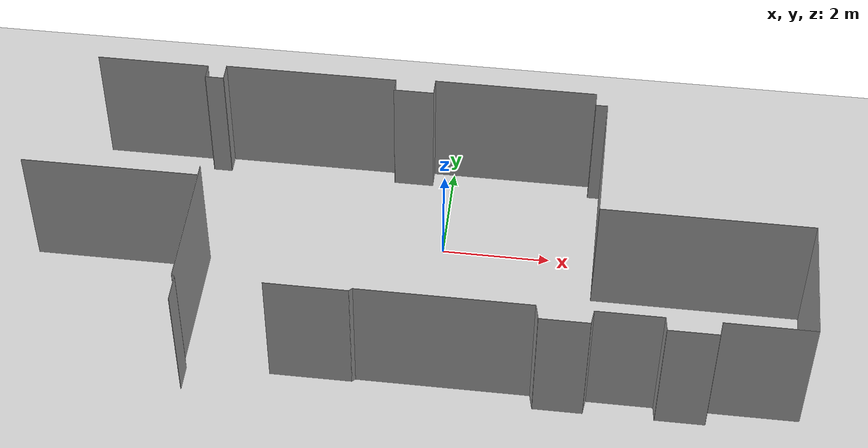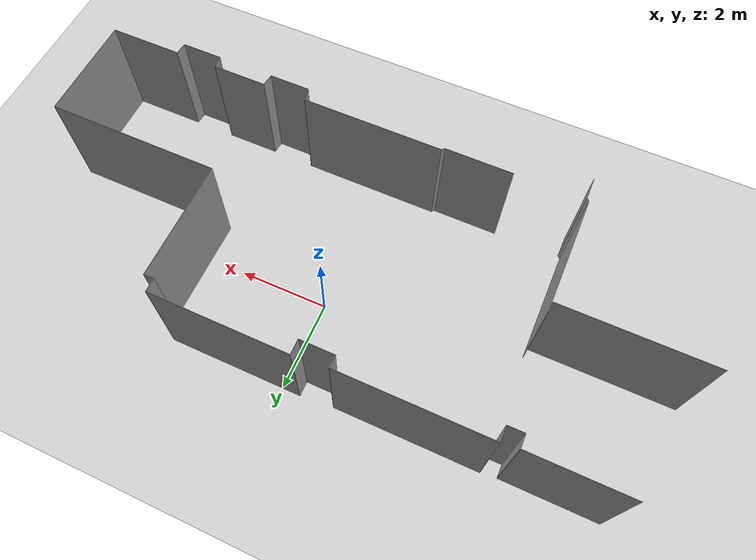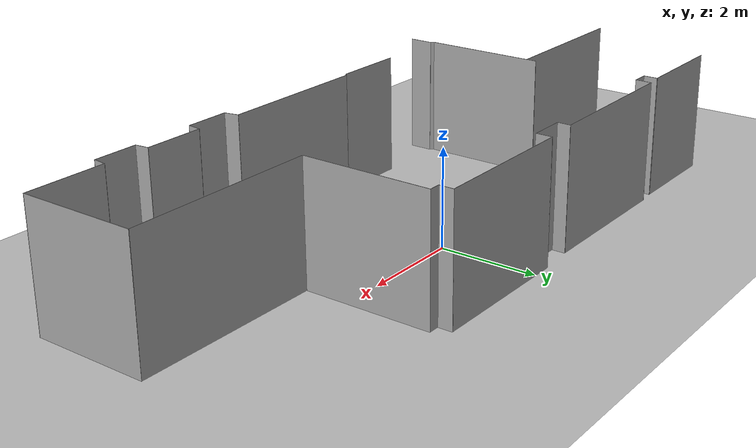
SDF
<sdf version="1.7">
 <world name="default">
  <light name="sun" type="directional">
   <pose>0 0 10 0 -0 0</pose>
   <diffuse>0.8 0.8 0.8 1</diffuse>
   <specular>0.2 0.2 0.2 1</specular>
   <attenuation>
    <range>1000</range>
    <constant>0.9</constant>
    <linear>0.01</linear>
    <quadratic>0.001</quadratic>
   </attenuation>
   <direction>-0.5 0.1 -0.9</direction>
   <spot><inner_angle>0</inner_angle><outer_angle>0</outer_angle><falloff>0</falloff></spot>
  </light>
  <plugin name="gazebo_ros_state" filename="libgazebo_ros_state.so">
   <ros>
    <namespace>/</namespace>
    <remapping>model_states:=model_states</remapping>
    <remapping>link_states:=link_states</remapping>
   </ros>
   <update_rate>1.0</update_rate>
  </plugin>
  <model name="ground_plane">
   <static>1</static>
   <link name="link">
    <collision name="collision">
     <geometry><plane><normal>0 0 1</normal><size>100 100</size></plane></geometry>
     <surface><friction><ode><mu>100</mu><mu2>50</mu2></ode></friction></surface>
    </collision>
    <visual name="visual">
     <cast_shadows>0</cast_shadows>
     <geometry><plane><normal>0 0 1</normal><size>100 100</size></plane></geometry>
     <material>
      <script><uri>file://media/materials/scripts/gazebo.material</uri><name>Gazebo/Grey</name></script>
     </material>
    </visual>
   </link>
  </model>
  <gravity>0 0 -9.8</gravity>
  <magnetic_field>6e-06 2.3e-05 -4.2e-05</magnetic_field>
  <atmosphere type="adiabatic"/>
  <physics type="ode">
   <max_step_size>0.01</max_step_size>
   <real_time_factor>1</real_time_factor>
   <real_time_update_rate>100</real_time_update_rate>
  </physics>
  <scene><ambient>0.4 0.4 0.4 1</ambient><background>0.7 0.7 0.7 1</background><shadows>0</shadows></scene>
  <audio><device>default</device></audio>
  <spherical_coordinates>
   <surface_model>EARTH_WGS84</surface_model>
   <latitude_deg>0</latitude_deg>
   <longitude_deg>0</longitude_deg>
   <elevation>0</elevation>
   <heading_deg>0</heading_deg>
  </spherical_coordinates>
  <model name="school_8f_square">
   <link name="Wall_0">
    <pose>-4.2855 1.7895 0 0 -0 1.5708</pose>
    <visual name="Wall_0_Visual">
     <pose>0 0 1.25 0 -0 0</pose>
     <geometry><box><size>0.338 0.01 2.5</size></box></geometry>
     <material>
      <script><uri>file://media/materials/scripts/gazebo.material</uri><name>Gazebo/Grey</name></script>
      <ambient>1 1 1 1</ambient>
      <shader type="pixel"/>
     </material>
     <meta><layer>0</layer></meta>
    </visual>
    <collision name="Wall_0_Collision">
     <pose>0 0 1.25 0 -0 0</pose>
     <geometry><box><size>0.338 0.01 2.5</size></box></geometry>
     <surface>
      <friction>
       <ode><mu>1</mu><mu2>1</mu2><fdir1>0 0 0</fdir1><slip1>0</slip1><slip2>0</slip2></ode>
       <torsional>
        <coefficient>1</coefficient>
        <patch_radius>0</patch_radius>
        <surface_radius>0</surface_radius>
        <use_patch_radius>1</use_patch_radius>
        <ode><slip>0</slip></ode>
       </torsional>
      </friction>
      <bounce><restitution_coefficient>0</restitution_coefficient><threshold>1e+06</threshold></bounce>
      <contact>
       <collide_without_contact>0</collide_without_contact>
       <collide_without_contact_bitmask>1</collide_without_contact_bitmask>
       <collide_bitmask>1</collide_bitmask>
       <ode>
        <soft_cfm>0</soft_cfm>
        <soft_erp>0.2</soft_erp>
        <kp>1e+13</kp>
        <kd>1</kd>
        <max_vel>0.01</max_vel>
        <min_depth>0</min_depth>
       </ode>
       <bullet>
        <split_impulse>1</split_impulse>
        <split_impulse_penetration_threshold>-0.01</split_impulse_penetration_threshold>
        <soft_cfm>0</soft_cfm>
        <soft_erp>0.2</soft_erp>
        <kp>1e+13</kp>
        <kd>1</kd>
       </bullet>
      </contact>
     </surface>
    </collision>
   </link>
   <link name="Wall_10">
    <pose>-0.3235 1.8525 0 0 -0 1.5708</pose>
    <visual name="Wall_10_Visual">
     <pose>0 0 1.25 0 -0 0</pose>
     <geometry><box><size>0.338 0.01 2.5</size></box></geometry>
     <material>
      <script><uri>file://media/materials/scripts/gazebo.material</uri><name>Gazebo/Grey</name></script>
      <ambient>1 1 1 1</ambient>
      <shader type="pixel"/>
     </material>
     <meta><layer>0</layer></meta>
    </visual>
    <collision name="Wall_10_Collision">
     <pose>0 0 1.25 0 -0 0</pose>
     <geometry><box><size>0.338 0.01 2.5</size></box></geometry>
     <surface>
      <friction>
       <ode><mu>1</mu><mu2>1</mu2><fdir1>0 0 0</fdir1><slip1>0</slip1><slip2>0</slip2></ode>
       <torsional>
        <coefficient>1</coefficient>
        <patch_radius>0</patch_radius>
        <surface_radius>0</surface_radius>
        <use_patch_radius>1</use_patch_radius>
        <ode><slip>0</slip></ode>
       </torsional>
      </friction>
      <bounce><restitution_coefficient>0</restitution_coefficient><threshold>1e+06</threshold></bounce>
      <contact>
       <collide_without_contact>0</collide_without_contact>
       <collide_without_contact_bitmask>1</collide_without_contact_bitmask>
       <collide_bitmask>1</collide_bitmask>
       <ode>
        <soft_cfm>0</soft_cfm>
        <soft_erp>0.2</soft_erp>
        <kp>1e+13</kp>
        <kd>1</kd>
        <max_vel>0.01</max_vel>
        <min_depth>0</min_depth>
       </ode>
       <bullet>
        <split_impulse>1</split_impulse>
        <split_impulse_penetration_threshold>-0.01</split_impulse_penetration_threshold>
        <soft_cfm>0</soft_cfm>
        <soft_erp>0.2</soft_erp>
        <kp>1e+13</kp>
        <kd>1</kd>
       </bullet>
      </contact>
     </surface>
    </collision>
   </link>
   <link name="Wall_12">
    <pose>1.1865 2.0165 0 0 -0 0</pose>
    <visual name="Wall_12_Visual">
     <pose>0 0 1.25 0 -0 0</pose>
     <geometry><box><size>3.03 0.01 2.5</size></box></geometry>
     <material>
      <script><uri>file://media/materials/scripts/gazebo.material</uri><name>Gazebo/Grey</name></script>
      <ambient>1 1 1 1</ambient>
      <shader type="pixel"/>
     </material>
     <meta><layer>0</layer></meta>
    </visual>
    <collision name="Wall_12_Collision">
     <pose>0 0 1.25 0 -0 0</pose>
     <geometry><box><size>3.03 0.01 2.5</size></box></geometry>
     <surface>
      <friction>
       <ode><mu>1</mu><mu2>1</mu2><fdir1>0 0 0</fdir1><slip1>0</slip1><slip2>0</slip2></ode>
       <torsional>
        <coefficient>1</coefficient>
        <patch_radius>0</patch_radius>
        <surface_radius>0</surface_radius>
        <use_patch_radius>1</use_patch_radius>
        <ode><slip>0</slip></ode>
       </torsional>
      </friction>
      <bounce><restitution_coefficient>0</restitution_coefficient><threshold>1e+06</threshold></bounce>
      <contact>
       <collide_without_contact>0</collide_without_contact>
       <collide_without_contact_bitmask>1</collide_without_contact_bitmask>
       <collide_bitmask>1</collide_bitmask>
       <ode>
        <soft_cfm>0</soft_cfm>
        <soft_erp>0.2</soft_erp>
        <kp>1e+13</kp>
        <kd>1</kd>
        <max_vel>0.01</max_vel>
        <min_depth>0</min_depth>
       </ode>
       <bullet>
        <split_impulse>1</split_impulse>
        <split_impulse_penetration_threshold>-0.01</split_impulse_penetration_threshold>
        <soft_cfm>0</soft_cfm>
        <soft_erp>0.2</soft_erp>
        <kp>1e+13</kp>
        <kd>1</kd>
       </bullet>
      </contact>
     </surface>
    </collision>
   </link>
   <link name="Wall_14">
    <pose>2.6965 1.8715 0 0 0 -1.5708</pose>
    <visual name="Wall_14_Visual">
     <pose>0 0 1.25 0 -0 0</pose>
     <geometry><box><size>0.3 0.01 2.5</size></box></geometry>
     <material>
      <script><uri>file://media/materials/scripts/gazebo.material</uri><name>Gazebo/Grey</name></script>
      <ambient>1 1 1 1</ambient>
      <shader type="pixel"/>
     </material>
     <meta><layer>0</layer></meta>
    </visual>
    <collision name="Wall_14_Collision">
     <pose>0 0 1.25 0 -0 0</pose>
     <geometry><box><size>0.3 0.01 2.5</size></box></geometry>
     <surface>
      <friction>
       <ode><mu>1</mu><mu2>1</mu2><fdir1>0 0 0</fdir1><slip1>0</slip1><slip2>0</slip2></ode>
       <torsional>
        <coefficient>1</coefficient>
        <patch_radius>0</patch_radius>
        <surface_radius>0</surface_radius>
        <use_patch_radius>1</use_patch_radius>
        <ode><slip>0</slip></ode>
       </torsional>
      </friction>
      <bounce><restitution_coefficient>0</restitution_coefficient><threshold>1e+06</threshold></bounce>
      <contact>
       <collide_without_contact>0</collide_without_contact>
       <collide_without_contact_bitmask>1</collide_without_contact_bitmask>
       <collide_bitmask>1</collide_bitmask>
       <ode>
        <soft_cfm>0</soft_cfm>
        <soft_erp>0.2</soft_erp>
        <kp>1e+13</kp>
        <kd>1</kd>
        <max_vel>0.01</max_vel>
        <min_depth>0</min_depth>
       </ode>
       <bullet>
        <split_impulse>1</split_impulse>
        <split_impulse_penetration_threshold>-0.01</split_impulse_penetration_threshold>
        <soft_cfm>0</soft_cfm>
        <soft_erp>0.2</soft_erp>
        <kp>1e+13</kp>
        <kd>1</kd>
       </bullet>
      </contact>
     </surface>
    </collision>
   </link>
   <link name="Wall_17">
    <pose>2.8065 1.7265 0 0 -0 0</pose>
    <visual name="Wall_17_Visual">
     <pose>0 0 1.25 0 -0 0</pose>
     <geometry><box><size>0.23 0.01 2.5</size></box></geometry>
     <material>
      <script><uri>file://media/materials/scripts/gazebo.material</uri><name>Gazebo/Grey</name></script>
      <ambient>1 1 1 1</ambient>
      <shader type="pixel"/>
     </material>
     <meta><layer>0</layer></meta>
    </visual>
    <collision name="Wall_17_Collision">
     <pose>0 0 1.25 0 -0 0</pose>
     <geometry><box><size>0.23 0.01 2.5</size></box></geometry>
     <surface>
      <friction>
       <ode><mu>1</mu><mu2>1</mu2><fdir1>0 0 0</fdir1><slip1>0</slip1><slip2>0</slip2></ode>
       <torsional>
        <coefficient>1</coefficient>
        <patch_radius>0</patch_radius>
        <surface_radius>0</surface_radius>
        <use_patch_radius>1</use_patch_radius>
        <ode><slip>0</slip></ode>
       </torsional>
      </friction>
      <bounce><restitution_coefficient>0</restitution_coefficient><threshold>1e+06</threshold></bounce>
      <contact>
       <collide_without_contact>0</collide_without_contact>
       <collide_without_contact_bitmask>1</collide_without_contact_bitmask>
       <collide_bitmask>1</collide_bitmask>
       <ode>
        <soft_cfm>0</soft_cfm>
        <soft_erp>0.2</soft_erp>
        <kp>1e+13</kp>
        <kd>1</kd>
        <max_vel>0.01</max_vel>
        <min_depth>0</min_depth>
       </ode>
       <bullet>
        <split_impulse>1</split_impulse>
        <split_impulse_penetration_threshold>-0.01</split_impulse_penetration_threshold>
        <soft_cfm>0</soft_cfm>
        <soft_erp>0.2</soft_erp>
        <kp>1e+13</kp>
        <kd>1</kd>
       </bullet>
      </contact>
     </surface>
    </collision>
   </link>
   <link name="Wall_2">
    <pose>-2.676 1.9535 0 0 -0 0</pose>
    <visual name="Wall_2_Visual">
     <pose>0 0 1.25 0 -0 0</pose>
     <geometry><box><size>3.229 0.01 2.5</size></box></geometry>
     <material>
      <script><uri>file://media/materials/scripts/gazebo.material</uri><name>Gazebo/Grey</name></script>
      <ambient>1 1 1 1</ambient>
      <shader type="pixel"/>
     </material>
     <meta><layer>0</layer></meta>
    </visual>
    <collision name="Wall_2_Collision">
     <pose>0 0 1.25 0 -0 0</pose>
     <geometry><box><size>3.229 0.01 2.5</size></box></geometry>
     <surface>
      <friction>
       <ode><mu>1</mu><mu2>1</mu2><fdir1>0 0 0</fdir1><slip1>0</slip1><slip2>0</slip2></ode>
       <torsional>
        <coefficient>1</coefficient>
        <patch_radius>0</patch_radius>
        <surface_radius>0</surface_radius>
        <use_patch_radius>1</use_patch_radius>
        <ode><slip>0</slip></ode>
       </torsional>
      </friction>
      <bounce><restitution_coefficient>0</restitution_coefficient><threshold>1e+06</threshold></bounce>
      <contact>
       <collide_without_contact>0</collide_without_contact>
       <collide_without_contact_bitmask>1</collide_without_contact_bitmask>
       <collide_bitmask>1</collide_bitmask>
       <ode>
        <soft_cfm>0</soft_cfm>
        <soft_erp>0.2</soft_erp>
        <kp>1e+13</kp>
        <kd>1</kd>
        <max_vel>0.01</max_vel>
        <min_depth>0</min_depth>
       </ode>
       <bullet>
        <split_impulse>1</split_impulse>
        <split_impulse_penetration_threshold>-0.01</split_impulse_penetration_threshold>
        <soft_cfm>0</soft_cfm>
        <soft_erp>0.2</soft_erp>
        <kp>1e+13</kp>
        <kd>1</kd>
       </bullet>
      </contact>
     </surface>
    </collision>
   </link>
   <link name="Wall_22">
    <pose>2.9165 0.418 0 0 0 -1.5708</pose>
    <visual name="Wall_22_Visual">
     <pose>0 0 1.25 0 -0 0</pose>
     <geometry><box><size>2.627 0.01 2.5</size></box></geometry>
     <material>
      <script><uri>file://media/materials/scripts/gazebo.material</uri><name>Gazebo/Grey</name></script>
      <ambient>1 1 1 1</ambient>
      <shader type="pixel"/>
     </material>
     <meta><layer>0</layer></meta>
    </visual>
    <collision name="Wall_22_Collision">
     <pose>0 0 1.25 0 -0 0</pose>
     <geometry><box><size>2.627 0.01 2.5</size></box></geometry>
     <surface>
      <friction>
       <ode><mu>1</mu><mu2>1</mu2><fdir1>0 0 0</fdir1><slip1>0</slip1><slip2>0</slip2></ode>
       <torsional>
        <coefficient>1</coefficient>
        <patch_radius>0</patch_radius>
        <surface_radius>0</surface_radius>
        <use_patch_radius>1</use_patch_radius>
        <ode><slip>0</slip></ode>
       </torsional>
      </friction>
      <bounce><restitution_coefficient>0</restitution_coefficient><threshold>1e+06</threshold></bounce>
      <contact>
       <collide_without_contact>0</collide_without_contact>
       <collide_without_contact_bitmask>1</collide_without_contact_bitmask>
       <collide_bitmask>1</collide_bitmask>
       <ode>
        <soft_cfm>0</soft_cfm>
        <soft_erp>0.2</soft_erp>
        <kp>1e+13</kp>
        <kd>1</kd>
        <max_vel>0.01</max_vel>
        <min_depth>0</min_depth>
       </ode>
       <bullet>
        <split_impulse>1</split_impulse>
        <split_impulse_penetration_threshold>-0.01</split_impulse_penetration_threshold>
        <soft_cfm>0</soft_cfm>
        <soft_erp>0.2</soft_erp>
        <kp>1e+13</kp>
        <kd>1</kd>
       </bullet>
      </contact>
     </surface>
    </collision>
   </link>
   <link name="Wall_24">
    <pose>4.826 -0.8905 0 0 -0 0</pose>
    <visual name="Wall_24_Visual">
     <pose>0 0 1.25 0 -0 0</pose>
     <geometry><box><size>3.829 0.01 2.5</size></box></geometry>
     <material>
      <script><uri>file://media/materials/scripts/gazebo.material</uri><name>Gazebo/Grey</name></script>
      <ambient>1 1 1 1</ambient>
      <shader type="pixel"/>
     </material>
     <meta><layer>0</layer></meta>
    </visual>
    <collision name="Wall_24_Collision">
     <pose>0 0 1.25 0 -0 0</pose>
     <geometry><box><size>3.829 0.01 2.5</size></box></geometry>
     <surface>
      <friction>
       <ode><mu>1</mu><mu2>1</mu2><fdir1>0 0 0</fdir1><slip1>0</slip1><slip2>0</slip2></ode>
       <torsional>
        <coefficient>1</coefficient>
        <patch_radius>0</patch_radius>
        <surface_radius>0</surface_radius>
        <use_patch_radius>1</use_patch_radius>
        <ode><slip>0</slip></ode>
       </torsional>
      </friction>
      <bounce><restitution_coefficient>0</restitution_coefficient><threshold>1e+06</threshold></bounce>
      <contact>
       <collide_without_contact>0</collide_without_contact>
       <collide_without_contact_bitmask>1</collide_without_contact_bitmask>
       <collide_bitmask>1</collide_bitmask>
       <ode>
        <soft_cfm>0</soft_cfm>
        <soft_erp>0.2</soft_erp>
        <kp>1e+13</kp>
        <kd>1</kd>
        <max_vel>0.01</max_vel>
        <min_depth>0</min_depth>
       </ode>
       <bullet>
        <split_impulse>1</split_impulse>
        <split_impulse_penetration_threshold>-0.01</split_impulse_penetration_threshold>
        <soft_cfm>0</soft_cfm>
        <soft_erp>0.2</soft_erp>
        <kp>1e+13</kp>
        <kd>1</kd>
       </bullet>
      </contact>
     </surface>
    </collision>
   </link>
   <link name="Wall_26">
    <pose>6.7355 -2.07 0 0 0 -1.5708</pose>
    <visual name="Wall_26_Visual">
     <pose>0 0 1.25 0 -0 0</pose>
     <geometry><box><size>2.369 0.01 2.5</size></box></geometry>
     <material>
      <script><uri>file://media/materials/scripts/gazebo.material</uri><name>Gazebo/Grey</name></script>
      <ambient>1 1 1 1</ambient>
      <shader type="pixel"/>
     </material>
     <meta><layer>0</layer></meta>
    </visual>
    <collision name="Wall_26_Collision">
     <pose>0 0 1.25 0 -0 0</pose>
     <geometry><box><size>2.369 0.01 2.5</size></box></geometry>
     <surface>
      <friction>
       <ode><mu>1</mu><mu2>1</mu2><fdir1>0 0 0</fdir1><slip1>0</slip1><slip2>0</slip2></ode>
       <torsional>
        <coefficient>1</coefficient>
        <patch_radius>0</patch_radius>
        <surface_radius>0</surface_radius>
        <use_patch_radius>1</use_patch_radius>
        <ode><slip>0</slip></ode>
       </torsional>
      </friction>
      <bounce><restitution_coefficient>0</restitution_coefficient><threshold>1e+06</threshold></bounce>
      <contact>
       <collide_without_contact>0</collide_without_contact>
       <collide_without_contact_bitmask>1</collide_without_contact_bitmask>
       <collide_bitmask>1</collide_bitmask>
       <ode>
        <soft_cfm>0</soft_cfm>
        <soft_erp>0.2</soft_erp>
        <kp>1e+13</kp>
        <kd>1</kd>
        <max_vel>0.01</max_vel>
        <min_depth>0</min_depth>
       </ode>
       <bullet>
        <split_impulse>1</split_impulse>
        <split_impulse_penetration_threshold>-0.01</split_impulse_penetration_threshold>
        <soft_cfm>0</soft_cfm>
        <soft_erp>0.2</soft_erp>
        <kp>1e+13</kp>
        <kd>1</kd>
       </bullet>
      </contact>
     </surface>
    </collision>
   </link>
   <link name="Wall_28">
    <pose>5.9295 -3.2495 0 0 -0 3.14159</pose>
    <visual name="Wall_28_Visual">
     <pose>0 0 1.25 0 -0 0</pose>
     <geometry><box><size>1.622 0.01 2.5</size></box></geometry>
     <material>
      <script><uri>file://media/materials/scripts/gazebo.material</uri><name>Gazebo/Grey</name></script>
      <ambient>1 1 1 1</ambient>
      <shader type="pixel"/>
     </material>
     <meta><layer>0</layer></meta>
    </visual>
    <collision name="Wall_28_Collision">
     <pose>0 0 1.25 0 -0 0</pose>
     <geometry><box><size>1.622 0.01 2.5</size></box></geometry>
     <surface>
      <friction>
       <ode><mu>1</mu><mu2>1</mu2><fdir1>0 0 0</fdir1><slip1>0</slip1><slip2>0</slip2></ode>
       <torsional>
        <coefficient>1</coefficient>
        <patch_radius>0</patch_radius>
        <surface_radius>0</surface_radius>
        <use_patch_radius>1</use_patch_radius>
        <ode><slip>0</slip></ode>
       </torsional>
      </friction>
      <bounce><restitution_coefficient>0</restitution_coefficient><threshold>1e+06</threshold></bounce>
      <contact>
       <collide_without_contact>0</collide_without_contact>
       <collide_without_contact_bitmask>1</collide_without_contact_bitmask>
       <collide_bitmask>1</collide_bitmask>
       <ode>
        <soft_cfm>0</soft_cfm>
        <soft_erp>0.2</soft_erp>
        <kp>1e+13</kp>
        <kd>1</kd>
        <max_vel>0.01</max_vel>
        <min_depth>0</min_depth>
       </ode>
       <bullet>
        <split_impulse>1</split_impulse>
        <split_impulse_penetration_threshold>-0.01</split_impulse_penetration_threshold>
        <soft_cfm>0</soft_cfm>
        <soft_erp>0.2</soft_erp>
        <kp>1e+13</kp>
        <kd>1</kd>
       </bullet>
      </contact>
     </surface>
    </collision>
   </link>
   <link name="Wall_2_clone">
    <pose>-5.91607 -0.908661 0 0 -0 0</pose>
    <visual name="Wall_2_Visual">
     <pose>0 0 1.25 0 -0 0</pose>
     <geometry><box><size>3.229 0.01 2.5</size></box></geometry>
     <material>
      <script><uri>file://media/materials/scripts/gazebo.material</uri><name>Gazebo/Grey</name></script>
      <ambient>1 1 1 1</ambient>
      <shader type="pixel"/>
     </material>
     <meta><layer>0</layer></meta>
    </visual>
    <collision name="Wall_2_Collision">
     <pose>0 0 1.25 0 -0 0</pose>
     <geometry><box><size>3.229 0.01 2.5</size></box></geometry>
     <surface>
      <friction>
       <ode><mu>1</mu><mu2>1</mu2><fdir1>0 0 0</fdir1><slip1>0</slip1><slip2>0</slip2></ode>
       <torsional>
        <coefficient>1</coefficient>
        <patch_radius>0</patch_radius>
        <surface_radius>0</surface_radius>
        <use_patch_radius>1</use_patch_radius>
        <ode><slip>0</slip></ode>
       </torsional>
      </friction>
      <bounce><restitution_coefficient>0</restitution_coefficient><threshold>1e+06</threshold></bounce>
      <contact>
       <collide_without_contact>0</collide_without_contact>
       <collide_without_contact_bitmask>1</collide_without_contact_bitmask>
       <collide_bitmask>1</collide_bitmask>
       <ode>
        <soft_cfm>0</soft_cfm>
        <soft_erp>0.2</soft_erp>
        <kp>1e+13</kp>
        <kd>1</kd>
        <max_vel>0.01</max_vel>
        <min_depth>0</min_depth>
       </ode>
       <bullet>
        <split_impulse>1</split_impulse>
        <split_impulse_penetration_threshold>-0.01</split_impulse_penetration_threshold>
        <soft_cfm>0</soft_cfm>
        <soft_erp>0.2</soft_erp>
        <kp>1e+13</kp>
        <kd>1</kd>
       </bullet>
      </contact>
     </surface>
    </collision>
   </link>
   <link name="Wall_30">
    <pose>5.1075 -3.3855 0 0 0 -1.6879</pose>
    <visual name="Wall_30_Visual">
     <pose>0 0 1.25 0 -0 0</pose>
     <geometry><box><size>0.283876 0.01 2.5</size></box></geometry>
     <material>
      <script><uri>file://media/materials/scripts/gazebo.material</uri><name>Gazebo/Grey</name></script>
      <ambient>1 1 1 1</ambient>
      <shader type="pixel"/>
     </material>
     <meta><layer>0</layer></meta>
    </visual>
    <collision name="Wall_30_Collision">
     <pose>0 0 1.25 0 -0 0</pose>
     <geometry><box><size>0.283876 0.01 2.5</size></box></geometry>
     <surface>
      <friction>
       <ode><mu>1</mu><mu2>1</mu2><fdir1>0 0 0</fdir1><slip1>0</slip1><slip2>0</slip2></ode>
       <torsional>
        <coefficient>1</coefficient>
        <patch_radius>0</patch_radius>
        <surface_radius>0</surface_radius>
        <use_patch_radius>1</use_patch_radius>
        <ode><slip>0</slip></ode>
       </torsional>
      </friction>
      <bounce><restitution_coefficient>0</restitution_coefficient><threshold>1e+06</threshold></bounce>
      <contact>
       <collide_without_contact>0</collide_without_contact>
       <collide_without_contact_bitmask>1</collide_without_contact_bitmask>
       <collide_bitmask>1</collide_bitmask>
       <ode>
        <soft_cfm>0</soft_cfm>
        <soft_erp>0.2</soft_erp>
        <kp>1e+13</kp>
        <kd>1</kd>
        <max_vel>0.01</max_vel>
        <min_depth>0</min_depth>
       </ode>
       <bullet>
        <split_impulse>1</split_impulse>
        <split_impulse_penetration_threshold>-0.01</split_impulse_penetration_threshold>
        <soft_cfm>0</soft_cfm>
        <soft_erp>0.2</soft_erp>
        <kp>1e+13</kp>
        <kd>1</kd>
       </bullet>
      </contact>
     </surface>
    </collision>
   </link>
   <link name="Wall_33">
    <pose>4.645 -3.5215 0 0 -0 3.14159</pose>
    <visual name="Wall_33_Visual">
     <pose>0 0 1.25 0 -0 0</pose>
     <geometry><box><size>0.903 0.01 2.5</size></box></geometry>
     <material>
      <script><uri>file://media/materials/scripts/gazebo.material</uri><name>Gazebo/Grey</name></script>
      <ambient>1 1 1 1</ambient>
      <shader type="pixel"/>
     </material>
     <meta><layer>0</layer></meta>
    </visual>
    <collision name="Wall_33_Collision">
     <pose>0 0 1.25 0 -0 0</pose>
     <geometry><box><size>0.903 0.01 2.5</size></box></geometry>
     <surface>
      <friction>
       <ode><mu>1</mu><mu2>1</mu2><fdir1>0 0 0</fdir1><slip1>0</slip1><slip2>0</slip2></ode>
       <torsional>
        <coefficient>1</coefficient>
        <patch_radius>0</patch_radius>
        <surface_radius>0</surface_radius>
        <use_patch_radius>1</use_patch_radius>
        <ode><slip>0</slip></ode>
       </torsional>
      </friction>
      <bounce><restitution_coefficient>0</restitution_coefficient><threshold>1e+06</threshold></bounce>
      <contact>
       <collide_without_contact>0</collide_without_contact>
       <collide_without_contact_bitmask>1</collide_without_contact_bitmask>
       <collide_bitmask>1</collide_bitmask>
       <ode>
        <soft_cfm>0</soft_cfm>
        <soft_erp>0.2</soft_erp>
        <kp>1e+13</kp>
        <kd>1</kd>
        <max_vel>0.01</max_vel>
        <min_depth>0</min_depth>
       </ode>
       <bullet>
        <split_impulse>1</split_impulse>
        <split_impulse_penetration_threshold>-0.01</split_impulse_penetration_threshold>
        <soft_cfm>0</soft_cfm>
        <soft_erp>0.2</soft_erp>
        <kp>1e+13</kp>
        <kd>1</kd>
       </bullet>
      </contact>
     </surface>
    </collision>
   </link>
   <link name="Wall_35">
    <pose>4.1825 -3.3855 0 0 -0 1.6879</pose>
    <visual name="Wall_35_Visual">
     <pose>0 0 1.25 0 -0 0</pose>
     <geometry><box><size>0.284 0.01 2.5</size></box></geometry>
     <material>
      <script><uri>file://media/materials/scripts/gazebo.material</uri><name>Gazebo/Grey</name></script>
      <ambient>1 1 1 1</ambient>
      <shader type="pixel"/>
     </material>
     <meta><layer>0</layer></meta>
    </visual>
    <collision name="Wall_35_Collision">
     <pose>0 0 1.25 0 -0 0</pose>
     <geometry><box><size>0.284 0.01 2.5</size></box></geometry>
     <surface>
      <friction>
       <ode><mu>1</mu><mu2>1</mu2><fdir1>0 0 0</fdir1><slip1>0</slip1><slip2>0</slip2></ode>
       <torsional>
        <coefficient>1</coefficient>
        <patch_radius>0</patch_radius>
        <surface_radius>0</surface_radius>
        <use_patch_radius>1</use_patch_radius>
        <ode><slip>0</slip></ode>
       </torsional>
      </friction>
      <bounce><restitution_coefficient>0</restitution_coefficient><threshold>1e+06</threshold></bounce>
      <contact>
       <collide_without_contact>0</collide_without_contact>
       <collide_without_contact_bitmask>1</collide_without_contact_bitmask>
       <collide_bitmask>1</collide_bitmask>
       <ode>
        <soft_cfm>0</soft_cfm>
        <soft_erp>0.2</soft_erp>
        <kp>1e+13</kp>
        <kd>1</kd>
        <max_vel>0.01</max_vel>
        <min_depth>0</min_depth>
       </ode>
       <bullet>
        <split_impulse>1</split_impulse>
        <split_impulse_penetration_threshold>-0.01</split_impulse_penetration_threshold>
        <soft_cfm>0</soft_cfm>
        <soft_erp>0.2</soft_erp>
        <kp>1e+13</kp>
        <kd>1</kd>
       </bullet>
      </contact>
     </surface>
    </collision>
   </link>
   <link name="Wall_38">
    <pose>3.564 -3.2495 0 0 -0 3.14159</pose>
    <visual name="Wall_38_Visual">
     <pose>0 0 1.25 0 -0 0</pose>
     <geometry><box><size>1.215 0.01 2.5</size></box></geometry>
     <material>
      <script><uri>file://media/materials/scripts/gazebo.material</uri><name>Gazebo/Grey</name></script>
      <ambient>1 1 1 1</ambient>
      <shader type="pixel"/>
     </material>
     <meta><layer>0</layer></meta>
    </visual>
    <collision name="Wall_38_Collision">
     <pose>0 0 1.25 0 -0 0</pose>
     <geometry><box><size>1.215 0.01 2.5</size></box></geometry>
     <surface>
      <friction>
       <ode><mu>1</mu><mu2>1</mu2><fdir1>0 0 0</fdir1><slip1>0</slip1><slip2>0</slip2></ode>
       <torsional>
        <coefficient>1</coefficient>
        <patch_radius>0</patch_radius>
        <surface_radius>0</surface_radius>
        <use_patch_radius>1</use_patch_radius>
        <ode><slip>0</slip></ode>
       </torsional>
      </friction>
      <bounce><restitution_coefficient>0</restitution_coefficient><threshold>1e+06</threshold></bounce>
      <contact>
       <collide_without_contact>0</collide_without_contact>
       <collide_without_contact_bitmask>1</collide_without_contact_bitmask>
       <collide_bitmask>1</collide_bitmask>
       <ode>
        <soft_cfm>0</soft_cfm>
        <soft_erp>0.2</soft_erp>
        <kp>1e+13</kp>
        <kd>1</kd>
        <max_vel>0.01</max_vel>
        <min_depth>0</min_depth>
       </ode>
       <bullet>
        <split_impulse>1</split_impulse>
        <split_impulse_penetration_threshold>-0.01</split_impulse_penetration_threshold>
        <soft_cfm>0</soft_cfm>
        <soft_erp>0.2</soft_erp>
        <kp>1e+13</kp>
        <kd>1</kd>
       </bullet>
      </contact>
     </surface>
    </collision>
   </link>
   <link name="Wall_4">
    <pose>-1.0665 1.821 0 0 0 -1.5708</pose>
    <visual name="Wall_4_Visual">
     <pose>0 0 1.25 0 -0 0</pose>
     <geometry><box><size>0.275 0.01 2.5</size></box></geometry>
     <material>
      <script><uri>file://media/materials/scripts/gazebo.material</uri><name>Gazebo/Grey</name></script>
      <ambient>1 1 1 1</ambient>
      <shader type="pixel"/>
     </material>
     <meta><layer>0</layer></meta>
    </visual>
    <collision name="Wall_4_Collision">
     <pose>0 0 1.25 0 -0 0</pose>
     <geometry><box><size>0.275 0.01 2.5</size></box></geometry>
     <surface>
      <friction>
       <ode><mu>1</mu><mu2>1</mu2><fdir1>0 0 0</fdir1><slip1>0</slip1><slip2>0</slip2></ode>
       <torsional>
        <coefficient>1</coefficient>
        <patch_radius>0</patch_radius>
        <surface_radius>0</surface_radius>
        <use_patch_radius>1</use_patch_radius>
        <ode><slip>0</slip></ode>
       </torsional>
      </friction>
      <bounce><restitution_coefficient>0</restitution_coefficient><threshold>1e+06</threshold></bounce>
      <contact>
       <collide_without_contact>0</collide_without_contact>
       <collide_without_contact_bitmask>1</collide_without_contact_bitmask>
       <collide_bitmask>1</collide_bitmask>
       <ode>
        <soft_cfm>0</soft_cfm>
        <soft_erp>0.2</soft_erp>
        <kp>1e+13</kp>
        <kd>1</kd>
        <max_vel>0.01</max_vel>
        <min_depth>0</min_depth>
       </ode>
       <bullet>
        <split_impulse>1</split_impulse>
        <split_impulse_penetration_threshold>-0.01</split_impulse_penetration_threshold>
        <soft_cfm>0</soft_cfm>
        <soft_erp>0.2</soft_erp>
        <kp>1e+13</kp>
        <kd>1</kd>
       </bullet>
      </contact>
     </surface>
    </collision>
   </link>
   <link name="Wall_41">
    <pose>2.94463 -3.38697 0 0 0 -1.69293</pose>
    <visual name="Wall_41_Visual">
     <pose>0 0 1.25 0 -0 0</pose>
     <geometry><box><size>0.287 0.01 2.5</size></box></geometry>
     <material>
      <script><uri>file://media/materials/scripts/gazebo.material</uri><name>Gazebo/Grey</name></script>
      <ambient>1 1 1 1</ambient>
      <shader type="pixel"/>
     </material>
     <meta><layer>0</layer></meta>
    </visual>
    <collision name="Wall_41_Collision">
     <pose>0 0 1.25 0 -0 0</pose>
     <geometry><box><size>0.287 0.01 2.5</size></box></geometry>
     <surface>
      <friction>
       <ode><mu>1</mu><mu2>1</mu2><fdir1>0 0 0</fdir1><slip1>0</slip1><slip2>0</slip2></ode>
       <torsional>
        <coefficient>1</coefficient>
        <patch_radius>0</patch_radius>
        <surface_radius>0</surface_radius>
        <use_patch_radius>1</use_patch_radius>
        <ode><slip>0</slip></ode>
       </torsional>
      </friction>
      <bounce><restitution_coefficient>0</restitution_coefficient><threshold>1e+06</threshold></bounce>
      <contact>
       <collide_without_contact>0</collide_without_contact>
       <collide_without_contact_bitmask>1</collide_without_contact_bitmask>
       <collide_bitmask>1</collide_bitmask>
       <ode>
        <soft_cfm>0</soft_cfm>
        <soft_erp>0.2</soft_erp>
        <kp>1e+13</kp>
        <kd>1</kd>
        <max_vel>0.01</max_vel>
        <min_depth>0</min_depth>
       </ode>
       <bullet>
        <split_impulse>1</split_impulse>
        <split_impulse_penetration_threshold>-0.01</split_impulse_penetration_threshold>
        <soft_cfm>0</soft_cfm>
        <soft_erp>0.2</soft_erp>
        <kp>1e+13</kp>
        <kd>1</kd>
       </bullet>
      </contact>
     </surface>
    </collision>
   </link>
   <link name="Wall_46">
    <pose>2.48113 -3.52447 0 0 0 -3.14152</pose>
    <visual name="Wall_46_Visual">
     <pose>0 0 1.25 0 -0 0</pose>
     <geometry><box><size>0.903 0.01 2.5</size></box></geometry>
     <material>
      <script><uri>file://media/materials/scripts/gazebo.material</uri><name>Gazebo/Grey</name></script>
      <ambient>1 1 1 1</ambient>
      <shader type="pixel"/>
     </material>
     <meta><layer>0</layer></meta>
    </visual>
    <collision name="Wall_46_Collision">
     <pose>0 0 1.25 0 -0 0</pose>
     <geometry><box><size>0.903 0.01 2.5</size></box></geometry>
     <surface>
      <friction>
       <ode><mu>1</mu><mu2>1</mu2><fdir1>0 0 0</fdir1><slip1>0</slip1><slip2>0</slip2></ode>
       <torsional>
        <coefficient>1</coefficient>
        <patch_radius>0</patch_radius>
        <surface_radius>0</surface_radius>
        <use_patch_radius>1</use_patch_radius>
        <ode><slip>0</slip></ode>
       </torsional>
      </friction>
      <bounce><restitution_coefficient>0</restitution_coefficient><threshold>1e+06</threshold></bounce>
      <contact>
       <collide_without_contact>0</collide_without_contact>
       <collide_without_contact_bitmask>1</collide_without_contact_bitmask>
       <collide_bitmask>1</collide_bitmask>
       <ode>
        <soft_cfm>0</soft_cfm>
        <soft_erp>0.2</soft_erp>
        <kp>1e+13</kp>
        <kd>1</kd>
        <max_vel>0.01</max_vel>
        <min_depth>0</min_depth>
       </ode>
       <bullet>
        <split_impulse>1</split_impulse>
        <split_impulse_penetration_threshold>-0.01</split_impulse_penetration_threshold>
        <soft_cfm>0</soft_cfm>
        <soft_erp>0.2</soft_erp>
        <kp>1e+13</kp>
        <kd>1</kd>
       </bullet>
      </contact>
     </surface>
    </collision>
   </link>
   <link name="Wall_49">
    <pose>2.0045 -3.382 0 0 -0 1.77829</pose>
    <visual name="Wall_49_Visual">
     <pose>0 0 1.25 0 -0 0</pose>
     <geometry><box><size>0.301247 0.01 2.5</size></box></geometry>
     <material>
      <script><uri>file://media/materials/scripts/gazebo.material</uri><name>Gazebo/Grey</name></script>
      <ambient>1 1 1 1</ambient>
      <shader type="pixel"/>
     </material>
     <meta><layer>0</layer></meta>
    </visual>
    <collision name="Wall_49_Collision">
     <pose>0 0 1.25 0 -0 0</pose>
     <geometry><box><size>0.301247 0.01 2.5</size></box></geometry>
     <surface>
      <friction>
       <ode><mu>1</mu><mu2>1</mu2><fdir1>0 0 0</fdir1><slip1>0</slip1><slip2>0</slip2></ode>
       <torsional>
        <coefficient>1</coefficient>
        <patch_radius>0</patch_radius>
        <surface_radius>0</surface_radius>
        <use_patch_radius>1</use_patch_radius>
        <ode><slip>0</slip></ode>
       </torsional>
      </friction>
      <bounce><restitution_coefficient>0</restitution_coefficient><threshold>1e+06</threshold></bounce>
      <contact>
       <collide_without_contact>0</collide_without_contact>
       <collide_without_contact_bitmask>1</collide_without_contact_bitmask>
       <collide_bitmask>1</collide_bitmask>
       <ode>
        <soft_cfm>0</soft_cfm>
        <soft_erp>0.2</soft_erp>
        <kp>1e+13</kp>
        <kd>1</kd>
        <max_vel>0.01</max_vel>
        <min_depth>0</min_depth>
       </ode>
       <bullet>
        <split_impulse>1</split_impulse>
        <split_impulse_penetration_threshold>-0.01</split_impulse_penetration_threshold>
        <soft_cfm>0</soft_cfm>
        <soft_erp>0.2</soft_erp>
        <kp>1e+13</kp>
        <kd>1</kd>
       </bullet>
      </contact>
     </surface>
    </collision>
   </link>
   <link name="Wall_52">
    <pose>0.4075 -3.2395 0 0 -0 3.14159</pose>
    <visual name="Wall_52_Visual">
     <pose>0 0 1.25 0 -0 0</pose>
     <geometry><box><size>3.144 0.01 2.5</size></box></geometry>
     <material>
      <script><uri>file://media/materials/scripts/gazebo.material</uri><name>Gazebo/Grey</name></script>
      <ambient>1 1 1 1</ambient>
      <shader type="pixel"/>
     </material>
     <meta><layer>0</layer></meta>
    </visual>
    <collision name="Wall_52_Collision">
     <pose>0 0 1.25 0 -0 0</pose>
     <geometry><box><size>3.144 0.01 2.5</size></box></geometry>
     <surface>
      <friction>
       <ode><mu>1</mu><mu2>1</mu2><fdir1>0 0 0</fdir1><slip1>0</slip1><slip2>0</slip2></ode>
       <torsional>
        <coefficient>1</coefficient>
        <patch_radius>0</patch_radius>
        <surface_radius>0</surface_radius>
        <use_patch_radius>1</use_patch_radius>
        <ode><slip>0</slip></ode>
       </torsional>
      </friction>
      <bounce><restitution_coefficient>0</restitution_coefficient><threshold>1e+06</threshold></bounce>
      <contact>
       <collide_without_contact>0</collide_without_contact>
       <collide_without_contact_bitmask>1</collide_without_contact_bitmask>
       <collide_bitmask>1</collide_bitmask>
       <ode>
        <soft_cfm>0</soft_cfm>
        <soft_erp>0.2</soft_erp>
        <kp>1e+13</kp>
        <kd>1</kd>
        <max_vel>0.01</max_vel>
        <min_depth>0</min_depth>
       </ode>
       <bullet>
        <split_impulse>1</split_impulse>
        <split_impulse_penetration_threshold>-0.01</split_impulse_penetration_threshold>
        <soft_cfm>0</soft_cfm>
        <soft_erp>0.2</soft_erp>
        <kp>1e+13</kp>
        <kd>1</kd>
       </bullet>
      </contact>
     </surface>
    </collision>
   </link>
   <link name="Wall_57">
    <pose>-1.18838 -3.26718 0 0 0 -2.37747</pose>
    <visual name="Wall_57_Visual">
     <pose>0 0 1.25 0 -0 0</pose>
     <geometry><box><size>0.09 0.01 2.5</size></box></geometry>
     <material>
      <script><uri>file://media/materials/scripts/gazebo.material</uri><name>Gazebo/Grey</name></script>
      <ambient>1 1 1 1</ambient>
      <shader type="pixel"/>
     </material>
     <meta><layer>0</layer></meta>
    </visual>
    <collision name="Wall_57_Collision">
     <pose>0 0 1.25 0 -0 0</pose>
     <geometry><box><size>0.09 0.01 2.5</size></box></geometry>
     <surface>
      <friction>
       <ode><mu>1</mu><mu2>1</mu2><fdir1>0 0 0</fdir1><slip1>0</slip1><slip2>0</slip2></ode>
       <torsional>
        <coefficient>1</coefficient>
        <patch_radius>0</patch_radius>
        <surface_radius>0</surface_radius>
        <use_patch_radius>1</use_patch_radius>
        <ode><slip>0</slip></ode>
       </torsional>
      </friction>
      <bounce><restitution_coefficient>0</restitution_coefficient><threshold>1e+06</threshold></bounce>
      <contact>
       <collide_without_contact>0</collide_without_contact>
       <collide_without_contact_bitmask>1</collide_without_contact_bitmask>
       <collide_bitmask>1</collide_bitmask>
       <ode>
        <soft_cfm>0</soft_cfm>
        <soft_erp>0.2</soft_erp>
        <kp>1e+13</kp>
        <kd>1</kd>
        <max_vel>0.01</max_vel>
        <min_depth>0</min_depth>
       </ode>
       <bullet>
        <split_impulse>1</split_impulse>
        <split_impulse_penetration_threshold>-0.01</split_impulse_penetration_threshold>
        <soft_cfm>0</soft_cfm>
        <soft_erp>0.2</soft_erp>
        <kp>1e+13</kp>
        <kd>1</kd>
       </bullet>
      </contact>
     </surface>
    </collision>
   </link>
   <link name="Wall_75">
    <pose>-1.9625 -3.2945 0 0 -0 3.14159</pose>
    <visual name="Wall_75_Visual">
     <pose>0 0 1.25 0 -0 0</pose>
     <geometry><box><size>1.5 0.01 2.5</size></box></geometry>
     <material>
      <script><uri>file://media/materials/scripts/gazebo.material</uri><name>Gazebo/Grey</name></script>
      <ambient>1 1 1 1</ambient>
      <shader type="pixel"/>
     </material>
     <meta><layer>0</layer></meta>
    </visual>
    <collision name="Wall_75_Collision">
     <pose>0 0 1.25 0 -0 0</pose>
     <geometry><box><size>1.5 0.01 2.5</size></box></geometry>
     <surface>
      <friction>
       <ode><mu>1</mu><mu2>1</mu2><fdir1>0 0 0</fdir1><slip1>0</slip1><slip2>0</slip2></ode>
       <torsional>
        <coefficient>1</coefficient>
        <patch_radius>0</patch_radius>
        <surface_radius>0</surface_radius>
        <use_patch_radius>1</use_patch_radius>
        <ode><slip>0</slip></ode>
       </torsional>
      </friction>
      <bounce><restitution_coefficient>0</restitution_coefficient><threshold>1e+06</threshold></bounce>
      <contact>
       <collide_without_contact>0</collide_without_contact>
       <collide_without_contact_bitmask>1</collide_without_contact_bitmask>
       <collide_bitmask>1</collide_bitmask>
       <ode>
        <soft_cfm>0</soft_cfm>
        <soft_erp>0.2</soft_erp>
        <kp>1e+13</kp>
        <kd>1</kd>
        <max_vel>0.01</max_vel>
        <min_depth>0</min_depth>
       </ode>
       <bullet>
        <split_impulse>1</split_impulse>
        <split_impulse_penetration_threshold>-0.01</split_impulse_penetration_threshold>
        <soft_cfm>0</soft_cfm>
        <soft_erp>0.2</soft_erp>
        <kp>1e+13</kp>
        <kd>1</kd>
       </bullet>
      </contact>
     </surface>
    </collision>
   </link>
   <link name="Wall_77">
    <pose>-4.2855 -1.9885 0 0 0 -1.5708</pose>
    <visual name="Wall_77_Visual">
     <pose>0 0 1.25 0 -0 0</pose>
     <geometry><box><size>2.6 0.01 2.5</size></box></geometry>
     <material>
      <script><uri>file://media/materials/scripts/gazebo.material</uri><name>Gazebo/Grey</name></script>
      <ambient>1 1 1 1</ambient>
      <shader type="pixel"/>
     </material>
     <meta><layer>0</layer></meta>
    </visual>
    <collision name="Wall_77_Collision">
     <pose>0 0 1.25 0 -0 0</pose>
     <geometry><box><size>2.6 0.01 2.5</size></box></geometry>
     <surface>
      <friction>
       <ode><mu>1</mu><mu2>1</mu2><fdir1>0 0 0</fdir1><slip1>0</slip1><slip2>0</slip2></ode>
       <torsional>
        <coefficient>1</coefficient>
        <patch_radius>0</patch_radius>
        <surface_radius>0</surface_radius>
        <use_patch_radius>1</use_patch_radius>
        <ode><slip>0</slip></ode>
       </torsional>
      </friction>
      <bounce><restitution_coefficient>0</restitution_coefficient><threshold>1e+06</threshold></bounce>
      <contact>
       <collide_without_contact>0</collide_without_contact>
       <collide_without_contact_bitmask>1</collide_without_contact_bitmask>
       <collide_bitmask>1</collide_bitmask>
       <ode>
        <soft_cfm>0</soft_cfm>
        <soft_erp>0.2</soft_erp>
        <kp>1e+13</kp>
        <kd>1</kd>
        <max_vel>0.01</max_vel>
        <min_depth>0</min_depth>
       </ode>
       <bullet>
        <split_impulse>1</split_impulse>
        <split_impulse_penetration_threshold>-0.01</split_impulse_penetration_threshold>
        <soft_cfm>0</soft_cfm>
        <soft_erp>0.2</soft_erp>
        <kp>1e+13</kp>
        <kd>1</kd>
       </bullet>
      </contact>
     </surface>
    </collision>
   </link>
   <link name="Wall_79">
    <pose>-4.4605 1.6255 0 0 -0 3.14159</pose>
    <visual name="Wall_79_Visual">
     <pose>0 0 1.25 0 -0 0</pose>
     <geometry><box><size>0.36 0.01 2.5</size></box></geometry>
     <material>
      <script><uri>file://media/materials/scripts/gazebo.material</uri><name>Gazebo/Grey</name></script>
      <ambient>1 1 1 1</ambient>
      <shader type="pixel"/>
     </material>
     <meta><layer>0</layer></meta>
    </visual>
    <collision name="Wall_79_Collision">
     <pose>0 0 1.25 0 -0 0</pose>
     <geometry><box><size>0.36 0.01 2.5</size></box></geometry>
     <surface>
      <friction>
       <ode><mu>1</mu><mu2>1</mu2><fdir1>0 0 0</fdir1><slip1>0</slip1><slip2>0</slip2></ode>
       <torsional>
        <coefficient>1</coefficient>
        <patch_radius>0</patch_radius>
        <surface_radius>0</surface_radius>
        <use_patch_radius>1</use_patch_radius>
        <ode><slip>0</slip></ode>
       </torsional>
      </friction>
      <bounce><restitution_coefficient>0</restitution_coefficient><threshold>1e+06</threshold></bounce>
      <contact>
       <collide_without_contact>0</collide_without_contact>
       <collide_without_contact_bitmask>1</collide_without_contact_bitmask>
       <collide_bitmask>1</collide_bitmask>
       <ode>
        <soft_cfm>0</soft_cfm>
        <soft_erp>0.2</soft_erp>
        <kp>1e+13</kp>
        <kd>1</kd>
        <max_vel>0.01</max_vel>
        <min_depth>0</min_depth>
       </ode>
       <bullet>
        <split_impulse>1</split_impulse>
        <split_impulse_penetration_threshold>-0.01</split_impulse_penetration_threshold>
        <soft_cfm>0</soft_cfm>
        <soft_erp>0.2</soft_erp>
        <kp>1e+13</kp>
        <kd>1</kd>
       </bullet>
      </contact>
     </surface>
    </collision>
   </link>
   <link name="Wall_8">
    <pose>-0.695 1.6885 0 0 -0 0</pose>
    <visual name="Wall_8_Visual">
     <pose>0 0 1.25 0 -0 0</pose>
     <geometry><box><size>0.753 0.01 2.5</size></box></geometry>
     <material>
      <script><uri>file://media/materials/scripts/gazebo.material</uri><name>Gazebo/Grey</name></script>
      <ambient>1 1 1 1</ambient>
      <shader type="pixel"/>
     </material>
     <meta><layer>0</layer></meta>
    </visual>
    <collision name="Wall_8_Collision">
     <pose>0 0 1.25 0 -0 0</pose>
     <geometry><box><size>0.753 0.01 2.5</size></box></geometry>
     <surface>
      <friction>
       <ode><mu>1</mu><mu2>1</mu2><fdir1>0 0 0</fdir1><slip1>0</slip1><slip2>0</slip2></ode>
       <torsional>
        <coefficient>1</coefficient>
        <patch_radius>0</patch_radius>
        <surface_radius>0</surface_radius>
        <use_patch_radius>1</use_patch_radius>
        <ode><slip>0</slip></ode>
       </torsional>
      </friction>
      <bounce><restitution_coefficient>0</restitution_coefficient><threshold>1e+06</threshold></bounce>
      <contact>
       <collide_without_contact>0</collide_without_contact>
       <collide_without_contact_bitmask>1</collide_without_contact_bitmask>
       <collide_bitmask>1</collide_bitmask>
       <ode>
        <soft_cfm>0</soft_cfm>
        <soft_erp>0.2</soft_erp>
        <kp>1e+13</kp>
        <kd>1</kd>
        <max_vel>0.01</max_vel>
        <min_depth>0</min_depth>
       </ode>
       <bullet>
        <split_impulse>1</split_impulse>
        <split_impulse_penetration_threshold>-0.01</split_impulse_penetration_threshold>
        <soft_cfm>0</soft_cfm>
        <soft_erp>0.2</soft_erp>
        <kp>1e+13</kp>
        <kd>1</kd>
       </bullet>
      </contact>
     </surface>
    </collision>
   </link>
   <link name="Wall_81">
    <pose>-4.6355 1.771 0 0 -0 1.5708</pose>
    <visual name="Wall_81_Visual">
     <pose>0 0 1.25 0 -0 0</pose>
     <geometry><box><size>0.301 0.01 2.5</size></box></geometry>
     <material>
      <script><uri>file://media/materials/scripts/gazebo.material</uri><name>Gazebo/Grey</name></script>
      <ambient>1 1 1 1</ambient>
      <shader type="pixel"/>
     </material>
     <meta><layer>0</layer></meta>
    </visual>
    <collision name="Wall_81_Collision">
     <pose>0 0 1.25 0 -0 0</pose>
     <geometry><box><size>0.301 0.01 2.5</size></box></geometry>
     <surface>
      <friction>
       <ode><mu>1</mu><mu2>1</mu2><fdir1>0 0 0</fdir1><slip1>0</slip1><slip2>0</slip2></ode>
       <torsional>
        <coefficient>1</coefficient>
        <patch_radius>0</patch_radius>
        <surface_radius>0</surface_radius>
        <use_patch_radius>1</use_patch_radius>
        <ode><slip>0</slip></ode>
       </torsional>
      </friction>
      <bounce><restitution_coefficient>0</restitution_coefficient><threshold>1e+06</threshold></bounce>
      <contact>
       <collide_without_contact>0</collide_without_contact>
       <collide_without_contact_bitmask>1</collide_without_contact_bitmask>
       <collide_bitmask>1</collide_bitmask>
       <ode>
        <soft_cfm>0</soft_cfm>
        <soft_erp>0.2</soft_erp>
        <kp>1e+13</kp>
        <kd>1</kd>
        <max_vel>0.01</max_vel>
        <min_depth>0</min_depth>
       </ode>
       <bullet>
        <split_impulse>1</split_impulse>
        <split_impulse_penetration_threshold>-0.01</split_impulse_penetration_threshold>
        <soft_cfm>0</soft_cfm>
        <soft_erp>0.2</soft_erp>
        <kp>1e+13</kp>
        <kd>1</kd>
       </bullet>
      </contact>
     </surface>
    </collision>
   </link>
   <link name="Wall_86">
    <pose>-5.6855 1.9165 0 0 -0 3.14159</pose>
    <visual name="Wall_86_Visual">
     <pose>0 0 1.25 0 -0 0</pose>
     <geometry><box><size>2.11 0.01 2.5</size></box></geometry>
     <material>
      <script><uri>file://media/materials/scripts/gazebo.material</uri><name>Gazebo/Grey</name></script>
      <ambient>1 1 1 1</ambient>
      <shader type="pixel"/>
     </material>
     <meta><layer>0</layer></meta>
    </visual>
    <collision name="Wall_86_Collision">
     <pose>0 0 1.25 0 -0 0</pose>
     <geometry><box><size>2.11 0.01 2.5</size></box></geometry>
     <surface>
      <friction>
       <ode><mu>1</mu><mu2>1</mu2><fdir1>0 0 0</fdir1><slip1>0</slip1><slip2>0</slip2></ode>
       <torsional>
        <coefficient>1</coefficient>
        <patch_radius>0</patch_radius>
        <surface_radius>0</surface_radius>
        <use_patch_radius>1</use_patch_radius>
        <ode><slip>0</slip></ode>
       </torsional>
      </friction>
      <bounce><restitution_coefficient>0</restitution_coefficient><threshold>1e+06</threshold></bounce>
      <contact>
       <collide_without_contact>0</collide_without_contact>
       <collide_without_contact_bitmask>1</collide_without_contact_bitmask>
       <collide_bitmask>1</collide_bitmask>
       <ode>
        <soft_cfm>0</soft_cfm>
        <soft_erp>0.2</soft_erp>
        <kp>1e+13</kp>
        <kd>1</kd>
        <max_vel>0.01</max_vel>
        <min_depth>0</min_depth>
       </ode>
       <bullet>
        <split_impulse>1</split_impulse>
        <split_impulse_penetration_threshold>-0.01</split_impulse_penetration_threshold>
        <soft_cfm>0</soft_cfm>
        <soft_erp>0.2</soft_erp>
        <kp>1e+13</kp>
        <kd>1</kd>
       </bullet>
      </contact>
     </surface>
    </collision>
   </link>
   <link name="Wall_88">
    <pose>-4.25722 -3.31178 0 0 0 -0.785398</pose>
    <visual name="Wall_88_Visual">
     <pose>0 0 1.25 0 -0 0</pose>
     <geometry><box><size>0.09 0.01 2.5</size></box></geometry>
     <material>
      <script><uri>file://media/materials/scripts/gazebo.material</uri><name>Gazebo/Grey</name></script>
      <ambient>1 1 1 1</ambient>
      <shader type="pixel"/>
     </material>
     <meta><layer>0</layer></meta>
    </visual>
    <collision name="Wall_88_Collision">
     <pose>0 0 1.25 0 -0 0</pose>
     <geometry><box><size>0.09 0.01 2.5</size></box></geometry>
     <surface>
      <friction>
       <ode><mu>1</mu><mu2>1</mu2><fdir1>0 0 0</fdir1><slip1>0</slip1><slip2>0</slip2></ode>
       <torsional>
        <coefficient>1</coefficient>
        <patch_radius>0</patch_radius>
        <surface_radius>0</surface_radius>
        <use_patch_radius>1</use_patch_radius>
        <ode><slip>0</slip></ode>
       </torsional>
      </friction>
      <bounce><restitution_coefficient>0</restitution_coefficient><threshold>1e+06</threshold></bounce>
      <contact>
       <collide_without_contact>0</collide_without_contact>
       <collide_without_contact_bitmask>1</collide_without_contact_bitmask>
       <collide_bitmask>1</collide_bitmask>
       <ode>
        <soft_cfm>0</soft_cfm>
        <soft_erp>0.2</soft_erp>
        <kp>1e+13</kp>
        <kd>1</kd>
        <max_vel>0.01</max_vel>
        <min_depth>0</min_depth>
       </ode>
       <bullet>
        <split_impulse>1</split_impulse>
        <split_impulse_penetration_threshold>-0.01</split_impulse_penetration_threshold>
        <soft_cfm>0</soft_cfm>
        <soft_erp>0.2</soft_erp>
        <kp>1e+13</kp>
        <kd>1</kd>
       </bullet>
      </contact>
     </surface>
    </collision>
   </link>
   <link name="Wall_94">
    <pose>-4.2285 -3.5855 0 0 0 -1.5708</pose>
    <visual name="Wall_94_Visual">
     <pose>0 0 1.25 0 -0 0</pose>
     <geometry><box><size>0.5 0.01 2.5</size></box></geometry>
     <material>
      <script><uri>file://media/materials/scripts/gazebo.material</uri><name>Gazebo/Grey</name></script>
      <ambient>1 1 1 1</ambient>
      <shader type="pixel"/>
     </material>
     <meta><layer>0</layer></meta>
    </visual>
    <collision name="Wall_94_Collision">
     <pose>0 0 1.25 0 -0 0</pose>
     <geometry><box><size>0.5 0.01 2.5</size></box></geometry>
     <surface>
      <friction>
       <ode><mu>1</mu><mu2>1</mu2><fdir1>0 0 0</fdir1><slip1>0</slip1><slip2>0</slip2></ode>
       <torsional>
        <coefficient>1</coefficient>
        <patch_radius>0</patch_radius>
        <surface_radius>0</surface_radius>
        <use_patch_radius>1</use_patch_radius>
        <ode><slip>0</slip></ode>
       </torsional>
      </friction>
      <bounce><restitution_coefficient>0</restitution_coefficient><threshold>1e+06</threshold></bounce>
      <contact>
       <collide_without_contact>0</collide_without_contact>
       <collide_without_contact_bitmask>1</collide_without_contact_bitmask>
       <collide_bitmask>1</collide_bitmask>
       <ode>
        <soft_cfm>0</soft_cfm>
        <soft_erp>0.2</soft_erp>
        <kp>1e+13</kp>
        <kd>1</kd>
        <max_vel>0.01</max_vel>
        <min_depth>0</min_depth>
       </ode>
       <bullet>
        <split_impulse>1</split_impulse>
        <split_impulse_penetration_threshold>-0.01</split_impulse_penetration_threshold>
        <soft_cfm>0</soft_cfm>
        <soft_erp>0.2</soft_erp>
        <kp>1e+13</kp>
        <kd>1</kd>
       </bullet>
      </contact>
     </surface>
    </collision>
   </link>
   <static>1</static>
   <pose>-0.0745 0.000855 0 0 -0 0</pose>
  </model>
 </world>
</sdf>
